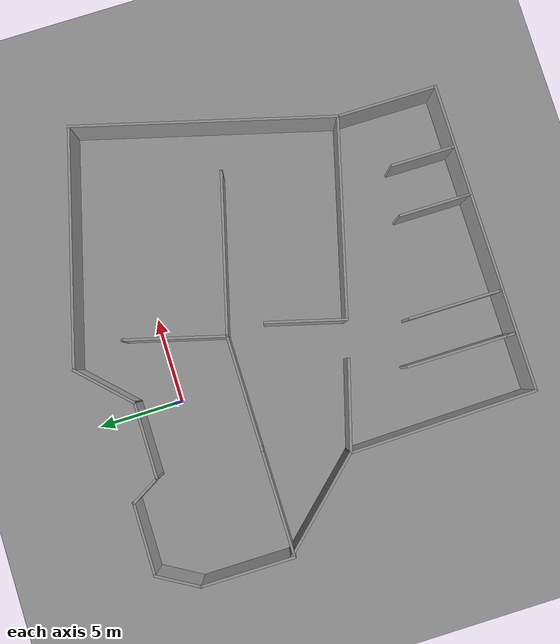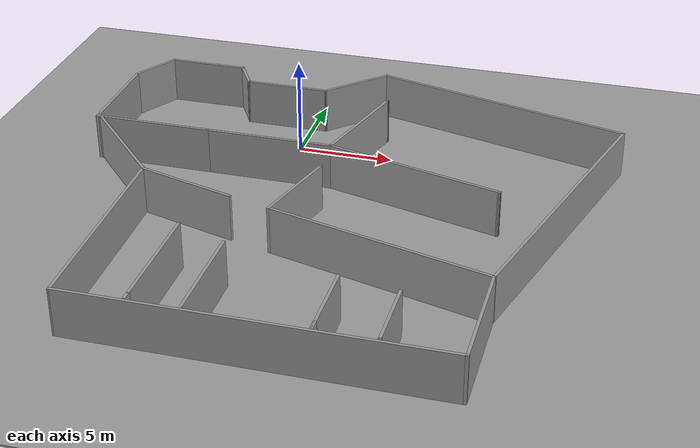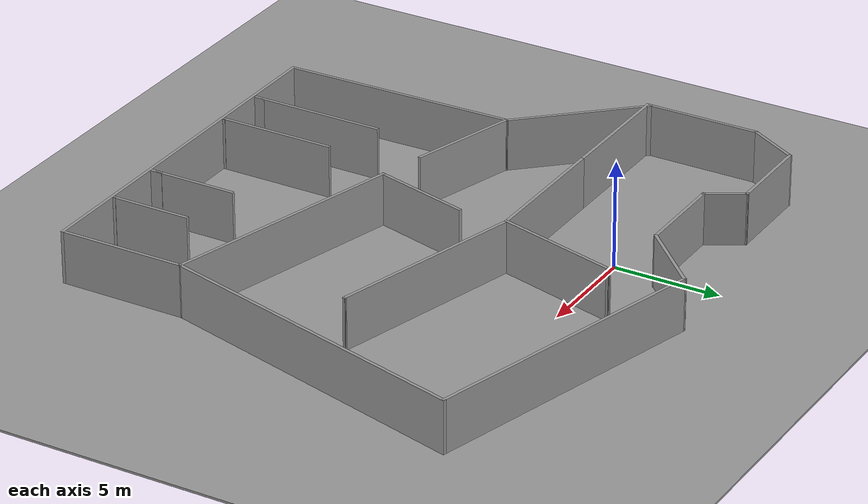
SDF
<sdf version="1.7">
 <world name="default">
  <light name="sun" type="directional">
   <pose>0 0 10 0 -0 0</pose>
   <diffuse>0.8 0.8 0.8 1</diffuse>
   <specular>0.2 0.2 0.2 1</specular>
   <attenuation>
    <range>1000</range>
    <constant>0.9</constant>
    <linear>0.01</linear>
    <quadratic>0.001</quadratic>
   </attenuation>
   <direction>-0.5 0.1 -0.9</direction>
   <spot><inner_angle>0</inner_angle><outer_angle>0</outer_angle><falloff>0</falloff></spot>
  </light>
  <model name="ground_plane">
   <static>1</static>
   <link name="link">
    <collision name="collision">
     <geometry><plane><normal>0 0 1</normal><size>100 100</size></plane></geometry>
     <surface>
      <contact><collide_bitmask>65535</collide_bitmask></contact>
      <friction><ode><mu>100</mu><mu2>50</mu2></ode></friction>
     </surface>
    </collision>
    <visual name="visual">
     <cast_shadows>0</cast_shadows>
     <geometry><plane><normal>0 0 1</normal><size>100 100</size></plane></geometry>
     <material>
      <script><uri>file://media/materials/scripts/gazebo.material</uri><name>Gazebo/Grey</name></script>
     </material>
    </visual>
   </link>
  </model>
  <gravity>0 0 -9.8</gravity>
  <magnetic_field>6e-06 2.3e-05 -4.2e-05</magnetic_field>
  <atmosphere type="adiabatic"/>
  <physics type="ode">
   <max_step_size>0.001</max_step_size>
   <real_time_factor>1</real_time_factor>
   <real_time_update_rate>1000</real_time_update_rate>
  </physics>
  <scene><ambient>0.4 0.4 0.4 1</ambient><background>0.7 0.7 0.7 1</background><shadows>1</shadows></scene>
  <spherical_coordinates>
   <surface_model>EARTH_WGS84</surface_model>
   <latitude_deg>0</latitude_deg>
   <longitude_deg>0</longitude_deg>
   <elevation>0</elevation>
   <heading_deg>0</heading_deg>
  </spherical_coordinates>
  <model name="ground_plane_0">
   <static>1</static>
   <link name="link">
    <collision name="collision">
     <geometry><plane><normal>0 0 1</normal><size>100 100</size></plane></geometry>
     <surface><friction><ode><mu>100</mu><mu2>50</mu2></ode></friction></surface>
    </collision>
    <visual name="visual">
     <cast_shadows>0</cast_shadows>
     <geometry><plane><normal>0 0 1</normal><size>100 100</size></plane></geometry>
     <material>
      <script><uri>file://media/materials/scripts/gazebo.material</uri><name>Gazebo/Grey</name></script>
     </material>
    </visual>
   </link>
   <pose>7.75706 0.97361 0 0 -0 0</pose>
  </model>
  <model name="wereo">
   <pose>3.43742 -7.08418 0 0 -0 0</pose>
   <link name="Wall_0">
    <collision name="Wall_0_Collision">
     <geometry><box><size>6.75 0.15 2.5</size></box></geometry>
     <pose>0 0 1.25 0 -0 0</pose>
    </collision>
    <visual name="Wall_0_Visual">
     <pose>0 0 1.25 0 -0 0</pose>
     <geometry><box><size>6.75 0.15 2.5</size></box></geometry>
     <material>
      <script><uri>file://media/materials/scripts/gazebo.material</uri><name>Gazebo/Grey</name></script>
      <ambient>1 1 1 1</ambient>
     </material>
     <meta><layer>0</layer></meta>
    </visual>
    <pose>-3.98742 3.39418 0 0 -0 3.14159</pose>
   </link>
   <link name="Wall_1">
    <collision name="Wall_1_Collision">
     <geometry><box><size>6.25 0.15 2.5</size></box></geometry>
     <pose>0 0 1.25 0 -0 0</pose>
    </collision>
    <visual name="Wall_1_Visual">
     <pose>0 0 1.25 0 -0 0</pose>
     <geometry><box><size>6.25 0.15 2.5</size></box></geometry>
     <material>
      <script><uri>file://media/materials/scripts/gazebo.material</uri><name>Gazebo/Grey</name></script>
      <ambient>1 1 1 1</ambient>
     </material>
     <meta><layer>0</layer></meta>
    </visual>
    <pose>-10.3374 3.39418 0 0 -0 3.14159</pose>
   </link>
   <link name="Wall_10">
    <collision name="Wall_10_Collision">
     <geometry><box><size>15.5 0.15 2.5</size></box></geometry>
     <pose>0 0 1.25 0 -0 0</pose>
    </collision>
    <visual name="Wall_10_Visual">
     <pose>0 0 1.25 0 -0 0</pose>
     <geometry><box><size>15.5 0.15 2.5</size></box></geometry>
     <material>
      <script><uri>file://media/materials/scripts/gazebo.material</uri><name>Gazebo/Grey</name></script>
      <ambient>1 1 1 1</ambient>
     </material>
     <meta><layer>0</layer></meta>
    </visual>
    <pose>11.4116 1.11794 0 0 -0 -1.8326</pose>
   </link>
   <link name="Wall_11">
    <collision name="Wall_11_Collision">
     <geometry><box><size>11.75 0.15 2.5</size></box></geometry>
     <pose>0 0 1.25 0 -0 0</pose>
    </collision>
    <visual name="Wall_11_Visual">
     <pose>0 0 1.25 0 -0 0</pose>
     <geometry><box><size>11.75 0.15 2.5</size></box></geometry>
     <material>
      <script><uri>file://media/materials/scripts/gazebo.material</uri><name>Gazebo/Grey</name></script>
      <ambient>1 1 1 1</ambient>
     </material>
     <meta><layer>0</layer></meta>
    </visual>
    <pose>3.82277 -4.79439 0 0 -0 2.87979</pose>
   </link>
   <link name="Wall_12">
    <collision name="Wall_12_Collision">
     <geometry><box><size>4.75 0.15 2.5</size></box></geometry>
     <pose>0 0 1.25 0 -0 0</pose>
    </collision>
    <visual name="Wall_12_Visual">
     <pose>0 0 1.25 0 -0 0</pose>
     <geometry><box><size>4.75 0.15 2.5</size></box></geometry>
     <material>
      <script><uri>file://media/materials/scripts/gazebo.material</uri><name>Gazebo/Grey</name></script>
      <ambient>1 1 1 1</ambient>
     </material>
     <meta><layer>0</layer></meta>
    </visual>
    <pose>-1.18431 -1.07161 0 0 -0 1.309</pose>
   </link>
   <link name="Wall_14">
    <collision name="Wall_14_Collision">
     <geometry><box><size>9.5 0.15 2.5</size></box></geometry>
     <pose>0 0 1.25 0 -0 0</pose>
    </collision>
    <visual name="Wall_14_Visual">
     <pose>0 0 1.25 0 -0 0</pose>
     <geometry><box><size>9.5 0.15 2.5</size></box></geometry>
     <material>
      <script><uri>file://media/materials/scripts/gazebo.material</uri><name>Gazebo/Grey</name></script>
      <ambient>1 1 1 1</ambient>
     </material>
     <meta><layer>0</layer></meta>
    </visual>
    <pose>3.82828 2.1842 0 0 -0 -0.261799</pose>
   </link>
   <link name="Wall_15">
    <collision name="Wall_15_Collision">
     <geometry><box><size>0.16 0.15 2.5</size></box></geometry>
     <pose>0 0 1.25 0 -0 0</pose>
    </collision>
    <visual name="Wall_15_Visual">
     <pose>0 0 1.25 0 -0 0</pose>
     <geometry><box><size>0.16 0.15 2.5</size></box></geometry>
     <material>
      <script><uri>file://media/materials/scripts/gazebo.material</uri><name>Gazebo/Grey</name></script>
      <ambient>1 1 1 1</ambient>
     </material>
     <meta><layer>0</layer></meta>
    </visual>
    <pose>8.34899 0.974222 0 0 -0 0</pose>
   </link>
   <link name="Wall_17">
    <collision name="Wall_17_Collision">
     <geometry><box><size>6 0.15 2.5</size></box></geometry>
     <pose>0 0 1.25 0 -0 0</pose>
    </collision>
    <visual name="Wall_17_Visual">
     <pose>0 0 1.25 0 -0 0</pose>
     <geometry><box><size>6 0.15 2.5</size></box></geometry>
     <material>
      <script><uri>file://media/materials/scripts/gazebo.material</uri><name>Gazebo/Grey</name></script>
      <ambient>1 1 1 1</ambient>
     </material>
     <meta><layer>0</layer></meta>
    </visual>
    <pose>0.069627 6.21951 0 0 -0 1.309</pose>
   </link>
   <link name="Wall_18">
    <collision name="Wall_18_Collision">
     <geometry><box><size>0.16 0.15 2.5</size></box></geometry>
     <pose>0 0 1.25 0 -0 0</pose>
    </collision>
    <visual name="Wall_18_Visual">
     <pose>0 0 1.25 0 -0 0</pose>
     <geometry><box><size>0.16 0.15 2.5</size></box></geometry>
     <material>
      <script><uri>file://media/materials/scripts/gazebo.material</uri><name>Gazebo/Grey</name></script>
      <ambient>1 1 1 1</ambient>
     </material>
     <meta><layer>0</layer></meta>
    </visual>
    <pose>0.831673 9.04485 0 0 -0 0</pose>
   </link>
   <link name="Wall_2">
    <collision name="Wall_2_Collision">
     <geometry><box><size>5.5 0.15 2.5</size></box></geometry>
     <pose>0 0 1.25 0 -0 0</pose>
    </collision>
    <visual name="Wall_2_Visual">
     <pose>0 0 1.25 0 -0 0</pose>
     <geometry><box><size>5.5 0.15 2.5</size></box></geometry>
     <material>
      <script><uri>file://media/materials/scripts/gazebo.material</uri><name>Gazebo/Grey</name></script>
      <ambient>1 1 1 1</ambient>
     </material>
     <meta><layer>0</layer></meta>
    </visual>
    <pose>-13.3874 6.06918 0 0 -0 1.5708</pose>
   </link>
   <link name="Wall_20">
    <collision name="Wall_20_Collision">
     <geometry><box><size>6 0.15 2.5</size></box></geometry>
     <pose>0 0 1.25 0 -0 0</pose>
    </collision>
    <visual name="Wall_20_Visual">
     <pose>0 0 1.25 0 -0 0</pose>
     <geometry><box><size>6 0.15 2.5</size></box></geometry>
     <material>
      <script><uri>file://media/materials/scripts/gazebo.material</uri><name>Gazebo/Grey</name></script>
      <ambient>1 1 1 1</ambient>
     </material>
     <meta><layer>0</layer></meta>
    </visual>
    <pose>9.42514 -9.22055 0 0 -0 -1.5708</pose>
   </link>
   <link name="Wall_21">
    <collision name="Wall_21_Collision">
     <geometry><box><size>18.25 0.15 2.5</size></box></geometry>
     <pose>0 0 1.25 0 -0 0</pose>
    </collision>
    <visual name="Wall_21_Visual">
     <pose>0 0 1.25 0 -0 0</pose>
     <geometry><box><size>18.25 0.15 2.5</size></box></geometry>
     <material>
      <script><uri>file://media/materials/scripts/gazebo.material</uri><name>Gazebo/Grey</name></script>
      <ambient>1 1 1 1</ambient>
     </material>
     <meta><layer>0</layer></meta>
    </visual>
    <pose>0.375143 -12.1455 0 0 -0 3.14159</pose>
   </link>
   <link name="Wall_22">
    <collision name="Wall_22_Collision">
     <geometry><box><size>11.0608 0.15 2.5</size></box></geometry>
     <pose>0 0 1.25 0 -0 0</pose>
    </collision>
    <visual name="Wall_22_Visual">
     <pose>0 0 1.25 0 -0 0</pose>
     <geometry><box><size>11.0608 0.15 2.5</size></box></geometry>
     <material>
      <script><uri>file://media/materials/scripts/gazebo.material</uri><name>Gazebo/Grey</name></script>
      <ambient>1 1 1 1</ambient>
     </material>
     <meta><layer>0</layer></meta>
    </visual>
    <pose>-8.79117 -6.6914 0 0 -0 1.59212</pose>
   </link>
   <link name="Wall_23">
    <collision name="Wall_23_Collision">
     <geometry><box><size>5.27958 0.15 2.5</size></box></geometry>
     <pose>0 0 1.25 0 -0 0</pose>
    </collision>
    <visual name="Wall_23_Visual">
     <pose>0 0 1.25 0 -0 0</pose>
     <geometry><box><size>5.27958 0.15 2.5</size></box></geometry>
     <material>
      <script><uri>file://media/materials/scripts/gazebo.material</uri><name>Gazebo/Grey</name></script>
      <ambient>1 1 1 1</ambient>
     </material>
     <meta><layer>0</layer></meta>
    </visual>
    <pose>-6.39784 -1.99879 0 0 -0 -0.282523</pose>
   </link>
   <link name="Wall_25">
    <collision name="Wall_25_Collision">
     <geometry><box><size>6.68221 0.15 2.5</size></box></geometry>
     <pose>0 0 1.25 0 -0 0</pose>
    </collision>
    <visual name="Wall_25_Visual">
     <pose>0 0 1.25 0 -0 0</pose>
     <geometry><box><size>6.68221 0.15 2.5</size></box></geometry>
     <material>
      <script><uri>file://media/materials/scripts/gazebo.material</uri><name>Gazebo/Grey</name></script>
      <ambient>1 1 1 1</ambient>
     </material>
     <meta><layer>0</layer></meta>
    </visual>
    <pose>-11.1287 1.15727 0 0 -0 2.31866</pose>
   </link>
   <link name="Wall_27">
    <collision name="Wall_27_Collision">
     <geometry><box><size>6 0.15 2.5</size></box></geometry>
     <pose>0 0 1.25 0 -0 0</pose>
    </collision>
    <visual name="Wall_27_Visual">
     <pose>0 0 1.25 0 -0 0</pose>
     <geometry><box><size>6 0.15 2.5</size></box></geometry>
     <material>
      <script><uri>file://media/materials/scripts/gazebo.material</uri><name>Gazebo/Grey</name></script>
      <ambient>1 1 1 1</ambient>
     </material>
     <meta><layer>0</layer></meta>
    </visual>
    <pose>-5.31103 -8.67603 0 0 -0 -1.5708</pose>
   </link>
   <link name="Wall_28">
    <collision name="Wall_28_Collision">
     <geometry><box><size>0.5 0.15 2.5</size></box></geometry>
     <pose>0 0 1.25 0 -0 0</pose>
    </collision>
    <visual name="Wall_28_Visual">
     <pose>0 0 1.25 0 -0 0</pose>
     <geometry><box><size>0.5 0.15 2.5</size></box></geometry>
     <material>
      <script><uri>file://media/materials/scripts/gazebo.material</uri><name>Gazebo/Grey</name></script>
      <ambient>1 1 1 1</ambient>
     </material>
     <meta><layer>0</layer></meta>
    </visual>
    <pose>-5.31103 -11.776 0 0 -0 -1.5708</pose>
   </link>
   <link name="Wall_3">
    <collision name="Wall_3_Collision">
     <geometry><box><size>2.75 0.15 2.5</size></box></geometry>
     <pose>0 0 1.25 0 -0 0</pose>
    </collision>
    <visual name="Wall_3_Visual">
     <pose>0 0 1.25 0 -0 0</pose>
     <geometry><box><size>2.75 0.15 2.5</size></box></geometry>
     <material>
      <script><uri>file://media/materials/scripts/gazebo.material</uri><name>Gazebo/Grey</name></script>
      <ambient>1 1 1 1</ambient>
     </material>
     <meta><layer>0</layer></meta>
    </visual>
    <pose>-12.7374 9.87001 0 0 -0 1.0472</pose>
   </link>
   <link name="Wall_30">
    <collision name="Wall_30_Collision">
     <geometry><box><size>5.5 0.15 2.5</size></box></geometry>
     <pose>0 0 1.25 0 -0 0</pose>
    </collision>
    <visual name="Wall_30_Visual">
     <pose>0 0 1.25 0 -0 0</pose>
     <geometry><box><size>5.5 0.15 2.5</size></box></geometry>
     <material>
      <script><uri>file://media/materials/scripts/gazebo.material</uri><name>Gazebo/Grey</name></script>
      <ambient>1 1 1 1</ambient>
     </material>
     <meta><layer>0</layer></meta>
    </visual>
    <pose>-2.78069 -9.35285 0 0 -0 -1.5708</pose>
   </link>
   <link name="Wall_31">
    <collision name="Wall_31_Collision">
     <geometry><box><size>0.16 0.15 2.5</size></box></geometry>
     <pose>0 0 1.25 0 -0 0</pose>
    </collision>
    <visual name="Wall_31_Visual">
     <pose>0 0 1.25 0 -0 0</pose>
     <geometry><box><size>0.16 0.15 2.5</size></box></geometry>
     <material>
      <script><uri>file://media/materials/scripts/gazebo.material</uri><name>Gazebo/Grey</name></script>
      <ambient>1 1 1 1</ambient>
     </material>
     <meta><layer>0</layer></meta>
    </visual>
    <pose>-2.77569 -12.0278 0 0 -0 0</pose>
   </link>
   <link name="Wall_33">
    <collision name="Wall_33_Collision">
     <geometry><box><size>4.25 0.15 2.5</size></box></geometry>
     <pose>0 0 1.25 0 -0 0</pose>
    </collision>
    <visual name="Wall_33_Visual">
     <pose>0 0 1.25 0 -0 0</pose>
     <geometry><box><size>4.25 0.15 2.5</size></box></geometry>
     <material>
      <script><uri>file://media/materials/scripts/gazebo.material</uri><name>Gazebo/Grey</name></script>
      <ambient>1 1 1 1</ambient>
     </material>
     <meta><layer>0</layer></meta>
    </visual>
    <pose>2.92278 -10.0192 0 0 -0 -1.5708</pose>
   </link>
   <link name="Wall_34">
    <collision name="Wall_34_Collision">
     <geometry><box><size>0.6501 0.15 2.5</size></box></geometry>
     <pose>0 0 1.25 0 -0 0</pose>
    </collision>
    <visual name="Wall_34_Visual">
     <pose>0 0 1.25 0 -0 0</pose>
     <geometry><box><size>0.6501 0.15 2.5</size></box></geometry>
     <material>
      <script><uri>file://media/materials/scripts/gazebo.material</uri><name>Gazebo/Grey</name></script>
      <ambient>1 1 1 1</ambient>
     </material>
     <meta><layer>0</layer></meta>
    </visual>
    <pose>2.92778 -11.8192 0 0 -0 1.5508</pose>
   </link>
   <link name="Wall_36">
    <collision name="Wall_36_Collision">
     <geometry><box><size>3.75 0.15 2.5</size></box></geometry>
     <pose>0 0 1.25 0 -0 0</pose>
    </collision>
    <visual name="Wall_36_Visual">
     <pose>0 0 1.25 0 -0 0</pose>
     <geometry><box><size>3.75 0.15 2.5</size></box></geometry>
     <material>
      <script><uri>file://media/materials/scripts/gazebo.material</uri><name>Gazebo/Grey</name></script>
      <ambient>1 1 1 1</ambient>
     </material>
     <meta><layer>0</layer></meta>
    </visual>
    <pose>5.79444 -10.2023 0 0 -0 -1.5708</pose>
   </link>
   <link name="Wall_37">
    <collision name="Wall_37_Collision">
     <geometry><box><size>0.16 0.15 2.5</size></box></geometry>
     <pose>0 0 1.25 0 -0 0</pose>
    </collision>
    <visual name="Wall_37_Visual">
     <pose>0 0 1.25 0 -0 0</pose>
     <geometry><box><size>0.16 0.15 2.5</size></box></geometry>
     <material>
      <script><uri>file://media/materials/scripts/gazebo.material</uri><name>Gazebo/Grey</name></script>
      <ambient>1 1 1 1</ambient>
     </material>
     <meta><layer>0</layer></meta>
    </visual>
    <pose>5.79944 -12.0023 0 0 -0 0</pose>
   </link>
   <link name="Wall_4">
    <collision name="Wall_4_Collision">
     <geometry><box><size>4.25 0.15 2.5</size></box></geometry>
     <pose>0 0 1.25 0 -0 0</pose>
    </collision>
    <visual name="Wall_4_Visual">
     <pose>0 0 1.25 0 -0 0</pose>
     <geometry><box><size>4.25 0.15 2.5</size></box></geometry>
     <material>
      <script><uri>file://media/materials/scripts/gazebo.material</uri><name>Gazebo/Grey</name></script>
      <ambient>1 1 1 1</ambient>
     </material>
     <meta><layer>0</layer></meta>
    </visual>
    <pose>-10.0374 10.9958 0 0 -0 0</pose>
   </link>
   <link name="Wall_5">
    <collision name="Wall_5_Collision">
     <geometry><box><size>2 0.15 2.5</size></box></geometry>
     <pose>0 0 1.25 0 -0 0</pose>
    </collision>
    <visual name="Wall_5_Visual">
     <pose>0 0 1.25 0 -0 0</pose>
     <geometry><box><size>2 0.15 2.5</size></box></geometry>
     <material>
      <script><uri>file://media/materials/scripts/gazebo.material</uri><name>Gazebo/Grey</name></script>
      <ambient>1 1 1 1</ambient>
     </material>
     <meta><layer>0</layer></meta>
    </visual>
    <pose>-7.52492 10.1948 0 0 -0 -1.0472</pose>
   </link>
   <link name="Wall_6">
    <collision name="Wall_6_Collision">
     <geometry><box><size>0.16 0.15 2.5</size></box></geometry>
     <pose>0 0 1.25 0 -0 0</pose>
    </collision>
    <visual name="Wall_6_Visual">
     <pose>0 0 1.25 0 -0 0</pose>
     <geometry><box><size>0.16 0.15 2.5</size></box></geometry>
     <material>
      <script><uri>file://media/materials/scripts/gazebo.material</uri><name>Gazebo/Grey</name></script>
      <ambient>1 1 1 1</ambient>
     </material>
     <meta><layer>0</layer></meta>
    </visual>
    <pose>-7.05742 9.3937 0 0 -0 0</pose>
   </link>
   <link name="Wall_7">
    <collision name="Wall_7_Collision">
     <geometry><box><size>4.5 0.15 2.5</size></box></geometry>
     <pose>0 0 1.25 0 -0 0</pose>
    </collision>
    <visual name="Wall_7_Visual">
     <pose>0 0 1.25 0 -0 0</pose>
     <geometry><box><size>4.5 0.15 2.5</size></box></geometry>
     <material>
      <script><uri>file://media/materials/scripts/gazebo.material</uri><name>Gazebo/Grey</name></script>
      <ambient>1 1 1 1</ambient>
     </material>
     <meta><layer>0</layer></meta>
    </visual>
    <pose>-4.87742 9.3937 0 0 -0 0</pose>
   </link>
   <link name="Wall_8">
    <collision name="Wall_8_Collision">
     <geometry><box><size>4 0.15 2.5</size></box></geometry>
     <pose>0 0 1.25 0 -0 0</pose>
    </collision>
    <visual name="Wall_8_Visual">
     <pose>0 0 1.25 0 -0 0</pose>
     <geometry><box><size>4 0.15 2.5</size></box></geometry>
     <material>
      <script><uri>file://media/materials/scripts/gazebo.material</uri><name>Gazebo/Grey</name></script>
      <ambient>1 1 1 1</ambient>
     </material>
     <meta><layer>0</layer></meta>
    </visual>
    <pose>-1.34124 10.7549 0 0 -0 0.785398</pose>
   </link>
   <link name="Wall_9">
    <collision name="Wall_9_Collision">
     <geometry><box><size>14 0.15 2.5</size></box></geometry>
     <pose>0 0 1.25 0 -0 0</pose>
    </collision>
    <visual name="Wall_9_Visual">
     <pose>0 0 1.25 0 -0 0</pose>
     <geometry><box><size>14 0.15 2.5</size></box></geometry>
     <material>
      <script><uri>file://media/materials/scripts/gazebo.material</uri><name>Gazebo/Grey</name></script>
      <ambient>1 1 1 1</ambient>
     </material>
     <meta><layer>0</layer></meta>
    </visual>
    <pose>6.70898 10.3237 0 0 -0 -0.261799</pose>
   </link>
   <static>1</static>
  </model>
 </world>
</sdf>
